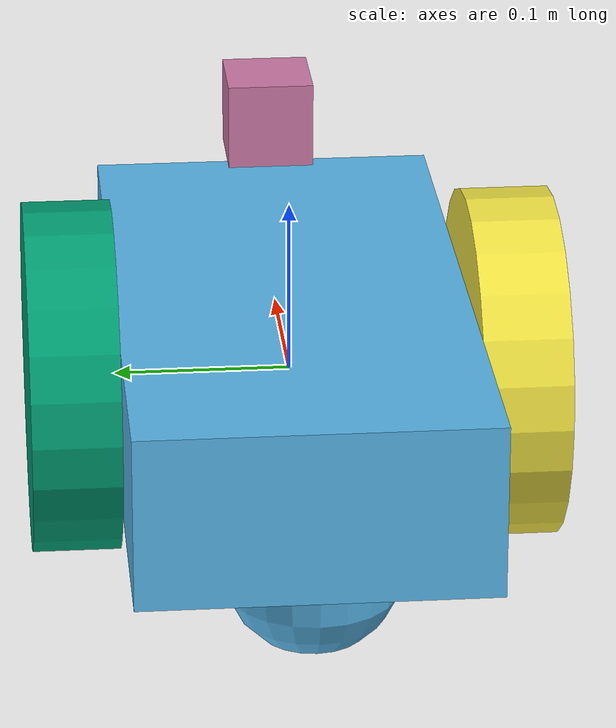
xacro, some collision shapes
<robot name="diff_robot" xmlns:xacro="http://www.ros.org/wiki/xacro">
  <xacro:include filename="$(find diff_robot)/urdf/diff_robot.gazebo"/>

  <xacro:property name="x" default="0.0"/>
  <xacro:property name="y" default="0.0"/>
  <xacro:property name="z" default="0.0"/>
  <xacro:property name="roll" default="0.0"/>
  <xacro:property name="pitch" default="0.0"/>
  <xacro:property name="yaw" default="0.0"/>

  <link name="robot_footprint"></link>
  <joint name="robot_footprint_joint" type="fixed">
    <origin xyz="${x} ${y} ${z}" rpy="${roll} ${pitch} ${yaw}"/>
    <parent link="robot_footprint"/>
    <child link="chassis" />
  </joint>

  <link name='chassis'>
    <pose>0 0 0.1 0 0 0</pose>
    <inertial>
      <mass value="15.0"/>
      <origin xyz="0.0 0 0" rpy=" 0 0 0"/>
      <inertia
          ixx="0.1" ixy="0" ixz="0"
          iyy="0.1" iyz="0"
          izz="0.1"
      />
    </inertial>

    <collision name='collision'>
      <origin xyz="0 0 0" rpy=" 0 0 0"/>
      <geometry>
        <box size=".4 .2 .1"/>
      </geometry>
    </collision>

    <visual name='chassis_visual'>
      <origin xyz="0 0 0" rpy=" 0 0 0"/>
      <geometry>
        <box size=".4 .2 .1"/>
      </geometry>
    </visual>

    <collision name='back_caster_collision'>
      <origin xyz="-0.15 0 -0.05" rpy=" 0 0 0"/>
      <geometry>
        <sphere radius="0.0499"/>
      </geometry>
    </collision>

    <visual name='back_caster_visual'>
      <origin xyz="-0.15 0 -0.05" rpy=" 0 0 0"/>
      <geometry>
        <sphere radius="0.05"/>
      </geometry>
    </visual>

    <collision name='front_caster_collision'>
      <origin xyz="0.15 0 -0.05" rpy=" 0 0 0"/>
      <geometry>
        <sphere radius="0.0499"/>
      </geometry>
    </collision>

    <visual name='front_caster_visual'>
      <pose xyz="0.15 0 -0.05" rpy=" 0 0 0"/>
      <geometry>
        <sphere radius="0.05"/>
      </geometry>
    </visual>
  </link>

  <!-- Left wheel -->
  <link name="left_wheel">
    <visual>
      <origin xyz="0 0 0" rpy="0 1.5707 1.5707"/>
      <geometry>
        <cylinder radius="0.1" length="0.05"/>
      </geometry>
    </visual>

    <collision>
      <origin xyz="0 0 0" rpy="0 1.5707 1.5707"/>
      <geometry>
        <cylinder radius="0.1" length="0.05"/>
      </geometry>
    </collision>

    <inertial>
      <origin xyz="0 0 0" rpy="0 1.5707 1.5707"/>
      <mass value="5"/>
      <inertia
              ixx="0.1" ixy="0" ixz="0"
              iyy="0.1" iyz="0" izz="0.1"
      />
    </inertial>
  </link>

  <!-- Right wheel -->
  <link name="right_wheel">
    <visual>
      <origin xyz="0 0 0" rpy="0 1.5707 1.5707"/>
      <geometry>
        <cylinder radius="0.1" length="0.05"/>
      </geometry>
    </visual>

    <collision>
      <origin xyz="0 0 0" rpy="0 1.5707 1.5707"/>
      <geometry>
        <cylinder radius="0.1" length="0.05"/>
      </geometry>
    </collision>

    <inertial>
      <origin xyz="0 0 0" rpy="0 1.5707 1.5707"/>
      <mass value="5"/>
      <inertia
              ixx="0.1" ixy="0" ixz="0"
              iyy="0.1" iyz="0" izz="0.1"
      />
    </inertial>
  </link>

  <!-- Camera -->
  <link name="camera">
    <visual>
      <origin xyz="0 0 0" rpy="0 0 0"/>
      <geometry>
        <box size="0.05 0.05 0.05"/>
      </geometry>
    </visual>

    <collision>
      <origin xyz="0 0 0" rpy="0 0 0"/>
      <geometry>
        <box size="0.05 0.05 0.05"/>
      </geometry>
    </collision>

    <inertial>
      <origin xyz="0 0 0" rpy="0 0 0"/>
      <mass value="0.1"/>
      <inertia
              ixx="1e-6" ixy="0" ixz="0"
              iyy="1e-6" iyz="0" izz="1e-6"
      />
    </inertial>
  </link>

  <link name="camera_link_optical">
  </link>

  <!-- Laser scan -->
  <link name="hokuyo">
    <origin xyz="0 0 0" rpy="0 0 0"/>
    <visual>
      <geometry>
        <mesh filename="package://diff_robot/meshes/hokuyo.dae"/>
      </geometry>
    </visual>

    <collision>
    <origin xyz="0 0 0" rpy="0 0 0"/>
      <geometry>
        <box size="0.05 0.05 0.05"/>
      </geometry>
    </collision>

    <inertial>
    <origin xyz="0 0 0" rpy="0 0 0"/>
    <mass value="1e-5"/>
    <inertia
            ixx="1e-6" ixy="0" ixz="0"
            iyy="1e-6" iyz="0" izz="1e-6"
    />
    </inertial>
  </link>

  <joint name="left_wheel_joint" type="continuous">
    <origin xyz="0 0.125 0" rpy="0 0 0"/>
    <child link="left_wheel"/>
    <parent link="chassis"/>
    <axis xyz="0 1 0" rpy="0 0 0"/>
    <limit effort="10000" velocity="1000"/>
    <dynamics damping="1.0" friction="1.0"/>
  </joint>

  <joint name="right_wheel_joint" type="continuous">
    <origin xyz="0 -0.125 0" rpy="0 0 0"/>
    <child link="right_wheel"/>
    <parent link="chassis"/>
    <axis xyz="0 1 0" rpy="0 0 0"/>
    <limit effort="10000" velocity="1000"/>
    <dynamics damping="1.0" friction="1.0"/>
  </joint>

  <joint name="camera_joint" type="fixed">
    <origin xyz="0.2 0 0" rpy="0 0 0"/>
    <child link="camera"/>
    <parent link="chassis"/>
    <axis xyz="0 1 0" rpy="0 0 0"/>
  </joint>

  <joint name="hokuyo_joint" type="fixed">
    <origin xyz="0.15 0 0.1" rpy="0 0 0"/>
    <child link="hokuyo"/>
    <parent link="chassis"/>
    <axis xyz="0 1 0" rpy="0 0 0"/>
  </joint>

  <joint name="camera_optical_joint" type="fixed">
    <origin xyz="0 0 0" rpy="-1.5707 0 -1.5707"/>
    <parent link="camera"/>
    <child link="camera_link_optical"/>
  </joint>
</robot>
